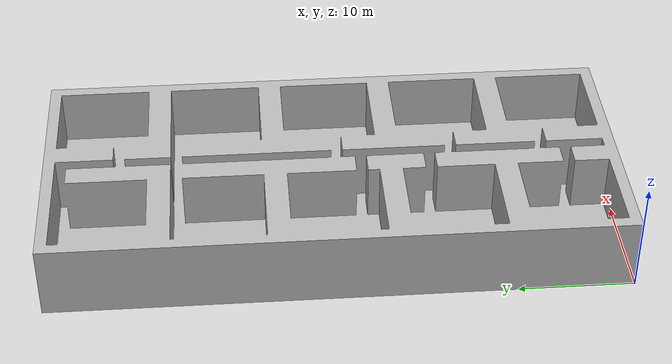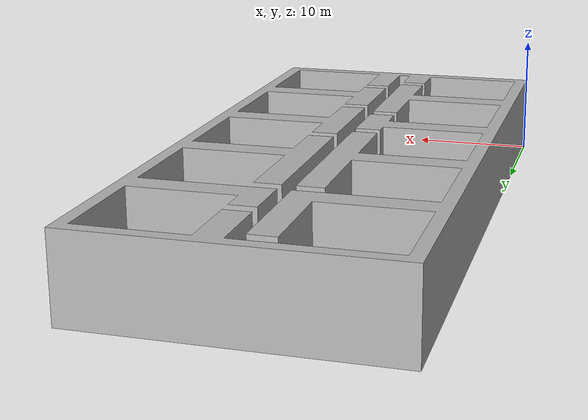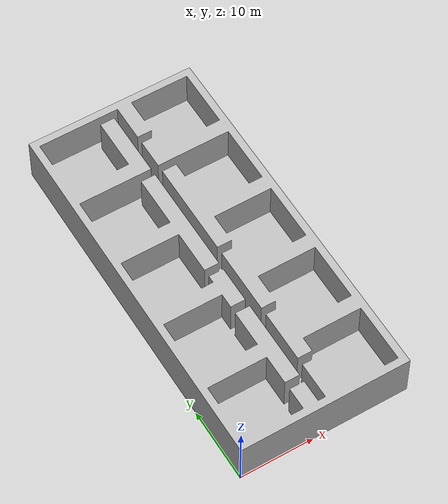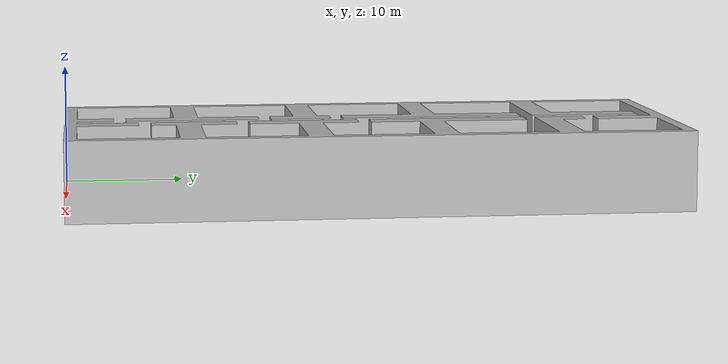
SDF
<?xml version='1.0' ?><sdf version='1.6'><model name='rooms2_2022-02-23_23:12:03.791272'><static>true</static><link name='link'><pose>0 0 0 0 0 0</pose><collision name='collision'><geometry><mesh><uri>model://rooms2_2022-02-23_23:12:03.791272/rooms2_2022-02-23_23:12:03.791272.stl</uri></mesh></geometry></collision><visual name='visual'><geometry><mesh><uri>model://rooms2_2022-02-23_23:12:03.791272/rooms2_2022-02-23_23:12:03.791272.stl</uri></mesh></geometry></visual></link></model></sdf>
